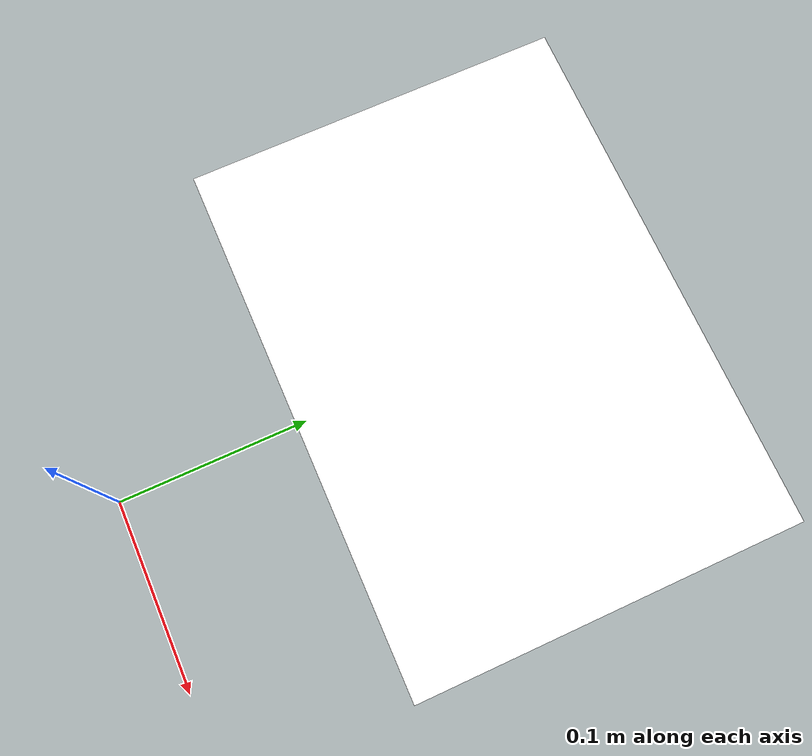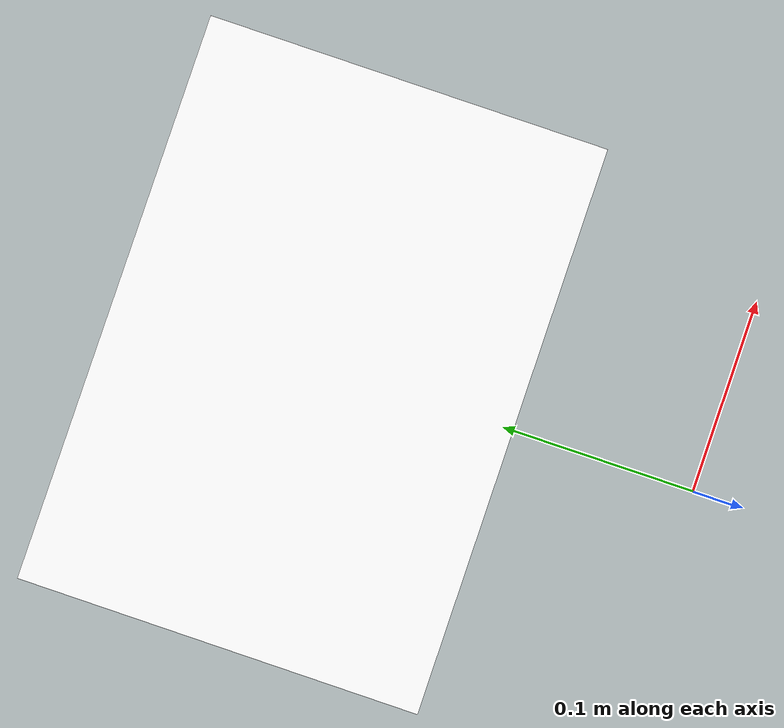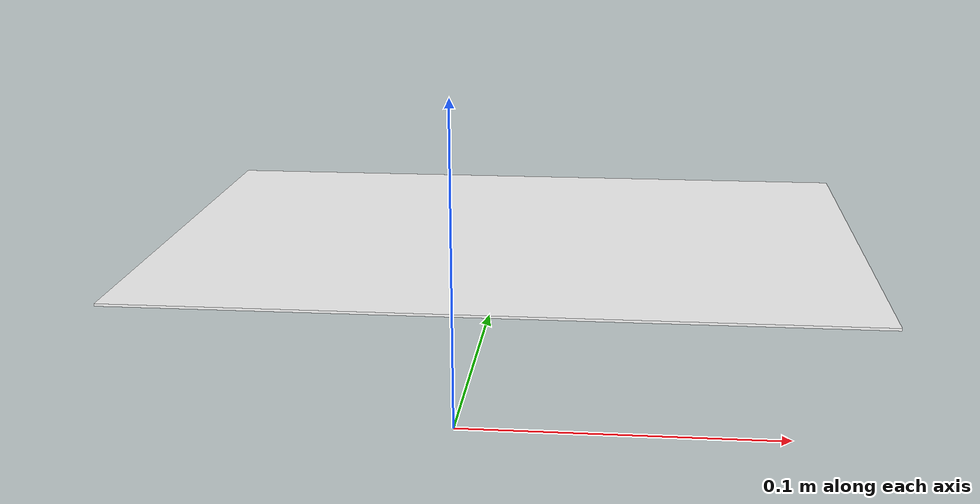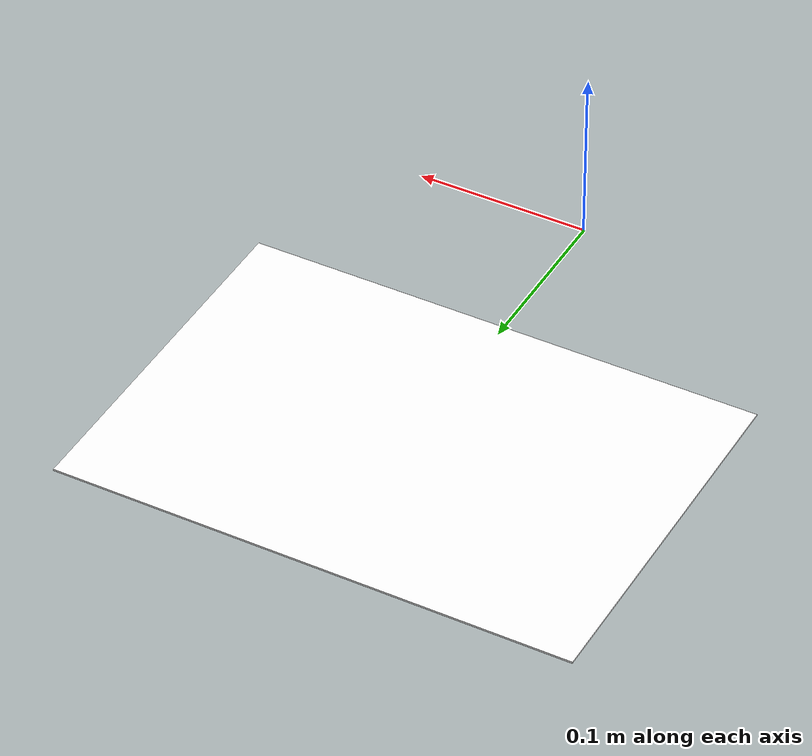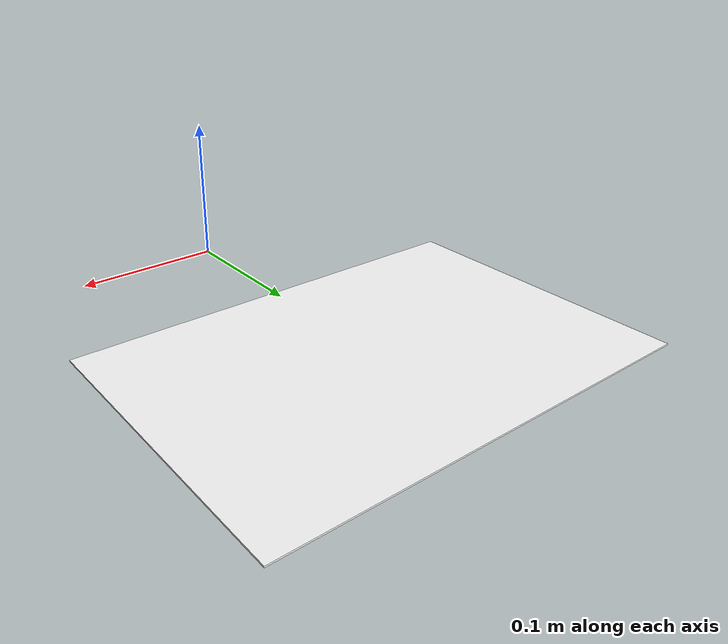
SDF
<?xml version="1.0" ?>
<sdf version="1.6">
  <world name="penplotter_world">

    <!-- ── Lighting ── -->
    <include>
      <uri>model://sun</uri>
    </include>

    <!-- ── Physics: increase iterations for closed-loop stability ── -->
    <physics name="default_physics" default="0" type="ode">
      <max_step_size>0.001</max_step_size>
      <real_time_factor>1</real_time_factor>
      <real_time_update_rate>1000</real_time_update_rate>
      <ode>
        <solver>
          <type>quick</type>
          <iters>150</iters>          <!-- high iters = better constraint solving -->
          <sor>1.3</sor>
          <use_dynamic_moi_rescaling>true</use_dynamic_moi_rescaling>
        </solver>
        <constraints>
          <cfm>0.0</cfm>
          <erp>0.2</erp>
          <contact_max_correcting_vel>100</contact_max_correcting_vel>
          <contact_surface_layer>0.001</contact_surface_layer>
        </constraints>
      </ode>
    </physics>

    <!-- ── The robot (URDF loaded via spawn script, not hardcoded here) ── -->

    <!-- ── A4 Paper ── -->
    <model name="a4_paper">
      <static>true</static>
      <pose>0 0.200 0.001 0 0 0</pose>
      <link name="paper_link">
        <collision name="paper_collision">
          <geometry>
            <box>
              <size>0.297 0.210 0.001</size>
            </box>
          </geometry>
        </collision>
        <visual name="paper_visual">
          <geometry>
            <box>
              <size>0.297 0.210 0.001</size>
            </box>
          </geometry>
          <material>
            <ambient>1 1 1 1</ambient>
            <diffuse>1 1 1 1</diffuse>
            <specular>0.5 0.5 0.5 1</specular>
            <emissive>0.3 0.3 0.3 1</emissive>  <!-- adds a slight self-glow so it looks crisp white -->
          </material>
        </visual>
      </link>
    </model>

  </world>
</sdf>
